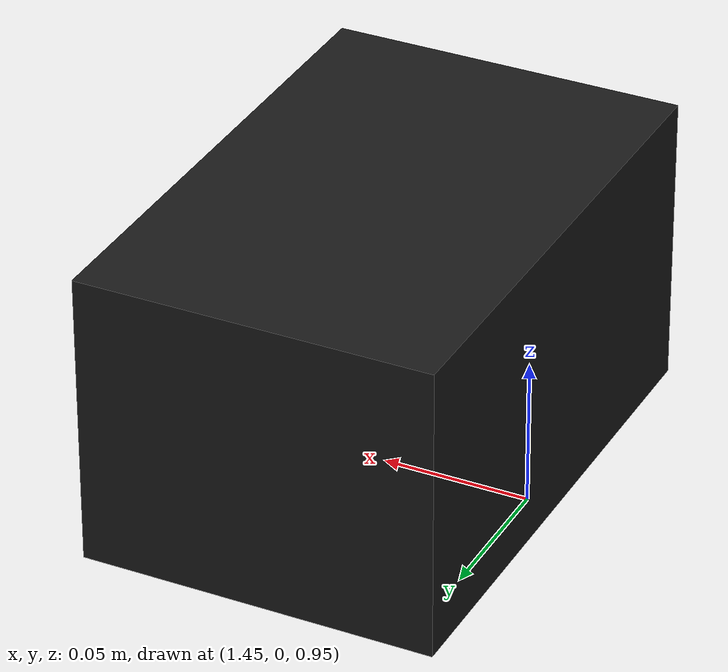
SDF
<?xml version="1.0"?>
<sdf version="1.9">
  <model name="omx_front_camera">
    <static>true</static>

    <!--
      카메라 모델의 월드 좌표입니다.

      x: 로봇 앞뒤 방향
      y: 로봇 좌우 방향
      z: 바닥으로부터의 높이

      아래 값은 예시이므로 OMX-AI의 실제 방향에 맞게 조정해야 합니다.
    -->
    <pose>1.5 0 1.0 0 0 3.14159</pose>

    <link name="camera_link">

      <!-- 카메라 외형 -->
      <visual name="camera_visual">
        <geometry>
          <box>
            <size>0.12 0.18 0.10</size>
          </box>
        </geometry>

        <material>
          <ambient>0.1 0.1 0.1 1</ambient>
          <diffuse>0.1 0.1 0.1 1</diffuse>
        </material>
      </visual>

      <!-- 카메라 센서 -->
      <sensor name="front_camera_sensor" type="camera">
        <always_on>true</always_on>
        <update_rate>30</update_rate>
        <visualize>true</visualize>

        <camera>
          <horizontal_fov>1.047</horizontal_fov>

          <image>
            <width>1280</width>
            <height>720</height>
            <format>R8G8B8</format>
          </image>

          <clip>
            <near>0.05</near>
            <far>100</far>
          </clip>
        </camera>

        <!-- ROS2로 발행될 카메라 토픽 이름 -->
        <topic>/omx_front_camera/image_raw</topic>
      </sensor>
    </link>
  </model>
</sdf>
